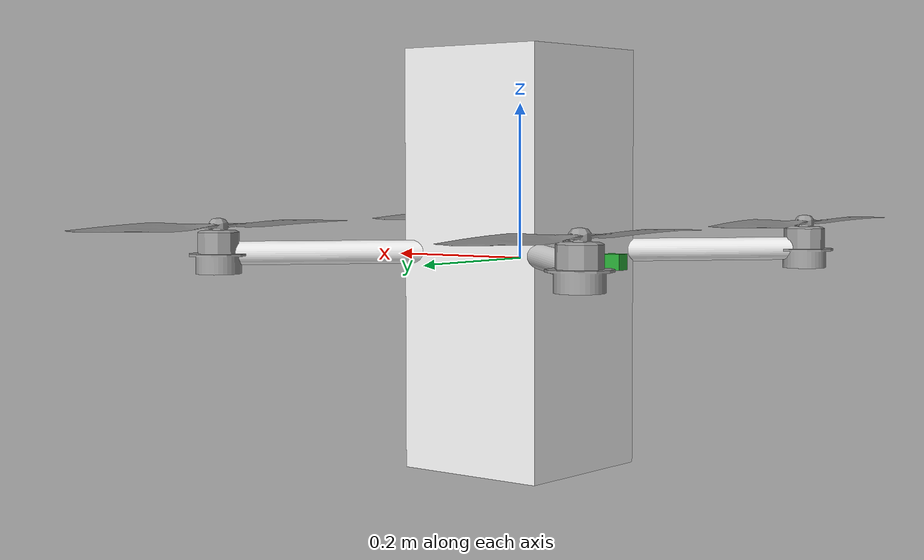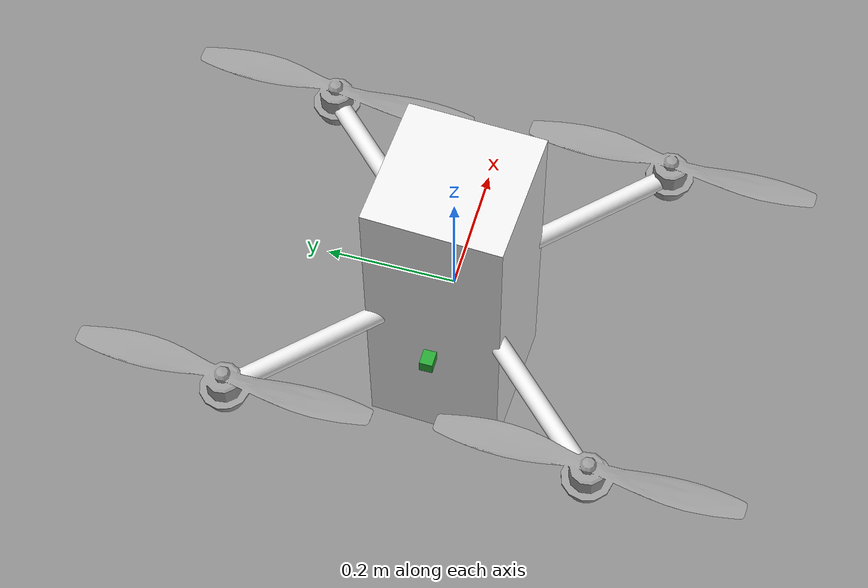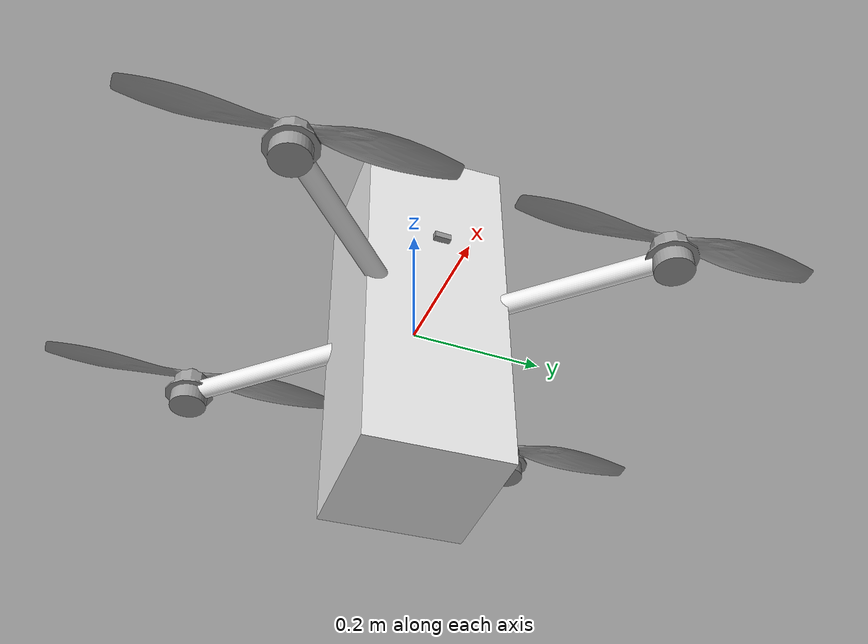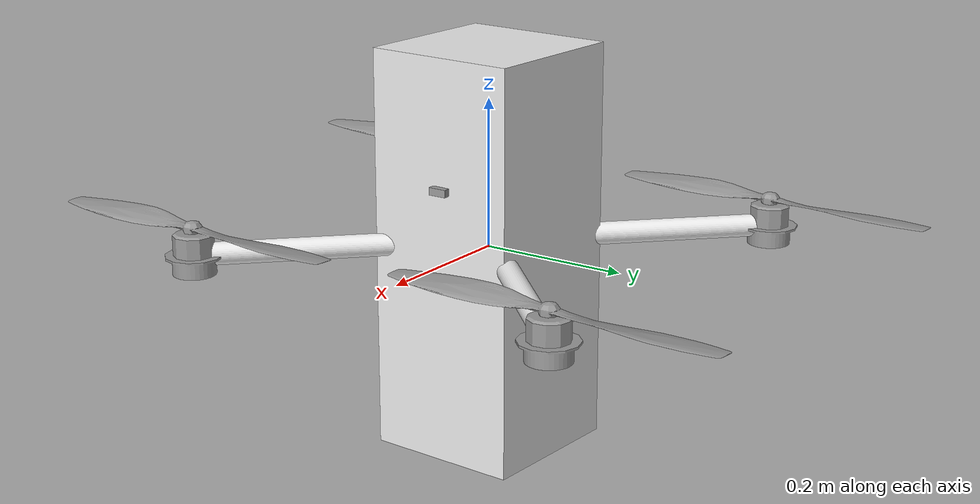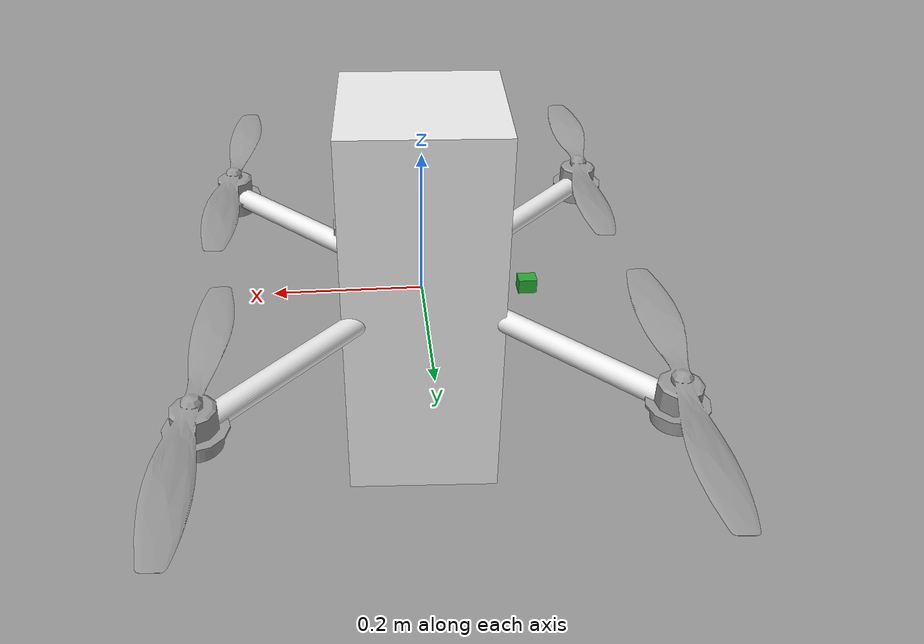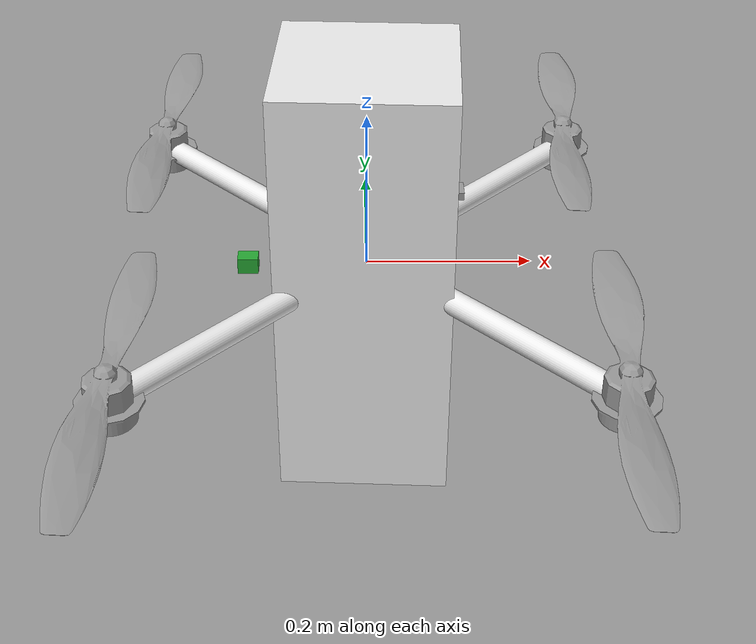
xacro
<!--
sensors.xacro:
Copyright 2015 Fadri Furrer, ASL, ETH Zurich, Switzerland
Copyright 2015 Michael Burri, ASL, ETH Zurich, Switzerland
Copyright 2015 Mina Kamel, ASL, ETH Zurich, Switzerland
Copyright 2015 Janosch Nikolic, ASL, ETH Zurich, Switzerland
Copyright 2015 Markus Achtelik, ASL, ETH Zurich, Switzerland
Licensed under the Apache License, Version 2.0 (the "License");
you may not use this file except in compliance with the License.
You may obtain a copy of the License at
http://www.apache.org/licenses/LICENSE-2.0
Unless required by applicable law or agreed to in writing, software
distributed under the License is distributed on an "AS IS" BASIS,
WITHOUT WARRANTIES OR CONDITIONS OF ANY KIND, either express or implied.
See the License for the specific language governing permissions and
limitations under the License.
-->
<?xml version="1.0"?>

<robot xmlns:xacro="http://ros.org/wiki/xacro" name="quadro">

  <xacro:property name="quadro_path" value="package://copter_models/quadro/mesh" />
  <xacro:property name="motor_command_topic" value="/gazebo/command/motor_speed" />

  <xacro:include filename="$(find copter_models)/quadro/materials.xacro" />
  <xacro:include filename="$(find copter_models)/quadro/sensors.xacro" />
  <xacro:include filename="$(find copter_models)/quadro/arm_prop.xacro" />

	<!-- Macro to add Drone -->
    <xacro:macro name="quadro" params="base_link_name mono stereo depth rfd_down hokuyo_hor volodyne_ver">

		<xacro:property name="base_geometry">
		  <origin rpy="0 0 -0.05" xyz="0 0 0"/>
		  <geometry>
		    <box size="0.21 0.21 0.54"/>
		  </geometry>
		</xacro:property>

        <link name="${base_link_name}">
            <inertial>
                <origin xyz="0 0 0" rpy="0 0 0"/>
                <mass value="1.8" />
                <inertia ixx="0.04" ixy="0.0" ixz="0.0" iyy="0.03" iyz="0.0" izz="0.02" />
            </inertial>
            <collision name="${base_link_name}_collision">
				<xacro:insert_block name="base_geometry" />
            </collision>
            <visual name="${base_link_name}_visual">
				<xacro:insert_block name="base_geometry" />
                <material name="white" />
            </visual>

            <self_collide> 0 </self_collide>
            <kinematic>1</kinematic>
            <gravity>1</gravity>
        </link>

        <xacro:quadro_arm
            parent="${base_link_name}"
            number="0"
            rotor_name="front_right"
            arm_xyz="0.105 0.105 0.01"
            arm_rpy="0 0 0"
            prop_xyz="0.1675 0.1675 0"
            prop_rpy="0 0 0"
            direction="cw"
            motor_number="2"
        />

        <xacro:quadro_arm
            parent="${base_link_name}"
            number="1"
            rotor_name="back_left"
            arm_xyz="-0.105 0.105 0.01"
            arm_rpy="0 0 0"
            prop_xyz="-0.1675 0.1675 0"
            prop_rpy="0 0 0"
            direction="ccw"
            motor_number="1"
        />

        <xacro:quadro_arm
            parent="${base_link_name}"
            number="2"
            rotor_name="back_right"
            arm_xyz="-0.105 -0.105 0.01"
            arm_rpy="0 0 0"
            prop_xyz="-0.1675 -0.1675 0"
            prop_rpy="0 0 0"
            direction="cw"
            motor_number="3"
        />

        <xacro:quadro_arm
            parent="${base_link_name}"
            number="3"
            rotor_name="front_left"
            arm_xyz="0.105 -0.105 0.01"
            arm_rpy="0 0 0"
            prop_xyz="0.1675 -0.1675 0"
            prop_rpy="0 0 0"
            direction="ccw"
            motor_number="0"
        />

        <xacro:lamp
        	parent_link="${base_link_name}"
        	lamp_name="lamp_front"
        	range="8"
        	xyz="0.195 0. -0.22"
        	rpy="0 -${pi/2} 0">
        </xacro:lamp>

        <xacro:if value="${mono}">
	        <xacro:mono_camera
	        	namespace=""
	        	parent_link="${base_link_name}"
	        	camera_suffix="mono"
	        	frame_rate="30"
	        	xyz="0.11 0 0.1"
	        	rpy="0 0 0"
	        />
	    </xacro:if>

        <xacro:if value="${stereo}">
	        <xacro:stereo_camera
	        	namespace=""
	        	camera_name="stereo"
	        	parent_link="${base_link_name}"
	        	frame_rate="30"
	        	max_range="10"
		        xyz_left="0.11 0.055 0.03"
		        xyz_right="0.11 -0.055 0.03"
		        baseline="0.11"
		        rpy="0 0 0"
	        />
        </xacro:if>

        <xacro:if value="${depth}">
	        <xacro:camera_depth
		        namespace=""
		        parent_link="${base_link_name}"
		        camera_suffix="depth"
		        frame_rate="30"
		        max_range="10"
		        xyz="0.11 0 -0.01"
		        rpy="0 0 0"
	        />
	    </xacro:if>

        <xacro:if value="${rfd_down}">
        	<xacro:rangefinder
        		namespace="/"
        		parent_link="${base_link_name}"
        		lidar_name="rfd_down_one"
        		rate="10.0"
        		hor_samples="1"
        		hor_min_angle="-0.01"
        		hor_max_angle="0.01"
        		ver_samples="1"
        		ver_min_angle="-0.01"
        		ver_max_angle="0.01"
        		min_range="0.05"
        		max_range="100.0"
        		fov="0.02"
        		gaus_noise="0.02">
        		<origin xyz="-0.145 0 0" rpy="0 1.5708 0"/>
        	</xacro:rangefinder>
        </xacro:if>

        <xacro:if value="${hokuyo_hor}">
        	<xacro:hokuyo
        		namespace="/"
        		parent_link="${base_link_name}"
        		lidar_name="hokuyo_hor"
        		rate="10.0"
        		hor_samples="360"
        		hor_min_angle="-2.3561944902"
        		hor_max_angle="2.3561944902"
        		ver_samples="1"
        		ver_min_angle="-0.001"
        		ver_max_angle="0.001"
        		max_range="10.0">
        		<origin xyz="0 0 0.13" rpy="0 0 0"/>
        	</xacro:hokuyo>
        </xacro:if>

        <xacro:if value="${volodyne_ver}">
        	<xacro:velodyne
        		namespace="/"
        		parent_link="${base_link_name}"
        		lidar_name="velodyne_ver"
        		rate="10.0"
        		hor_samples="120"
        		hor_min_angle="-${2*pi}"
        		hor_max_angle="${2*pi}"
        		ver_samples="32"
        		ver_min_angle="-0.53527"
        		ver_max_angle="0.18622"
        		min_range="0.65"
        		max_range="10.0"
        		gaus_noise="0.0">
        		<origin xyz="0 -0.05 0.09" rpy="0 ${pi/2} 0"/>
        	</xacro:velodyne>
        </xacro:if>

        <xacro:default_mavlink_interface
	        namespace=""
	        imu_sub_topic="imu"
	        mavlink_addr="INADDR_ANY"
	        mavlink_udp_port="14560"
        />

        <xacro:multirotors
        	link_name="${base_link_name}"
        />

	<xacro:fcu
		namespace=""
		parent_link="base_link"
		imu_topic="imu"
		xyz="0 0 0"
		rpy="0 0 0"
	/>

        <xacro:imu_sensor
	        namespace=""
	        parent_link="${base_link_name}"
	        imu_suffix="_ideal1"
	        imu_topic="imu_ideal1"
	        rate="100"
	        gauss_noise="0.02"
	        xyz="0 0 0"
	        rpy="0 0 0"
        />

    </xacro:macro>

	<!-- Use Xacro -->
	<xacro:quadro
		base_link_name="base_link"
		mono="true"
		stereo="true"
		depth="true"
		rfd_down="true"
		hokuyo_hor="true"
		volodyne_ver="true"
	/>

</robot>

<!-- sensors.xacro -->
<robot xmlns:xacro="http://ros.org/wiki/xacro">

<!-- Macro to add lamp -->
<xacro:macro name="lamp" params="parent_link lamp_name range xyz rpy">
   <link name="${lamp_name}_link">
      <inertial>
        <mass value="1e-5" />
        <origin xyz="0 0 0" rpy="0 0 0" />
        <inertia ixx="1e-6" ixy="0" ixz="0" iyy="1e-6" iyz="0" izz="1e-6" />
      </inertial>
   </link>
   <joint name="${lamp_name}_joint" type="fixed">
      <origin xyz="${xyz}" rpy="${rpy}"/>
      <parent link="${parent_link}" />
      <child link="${lamp_name}_link" />
   </joint>
   <gazebo reference="${lamp_name}_link">
	  <light type='spot'>
	    <pose>${xyz} ${rpy}</pose>
	    <diffuse>1. 1. 1. 1</diffuse>
	    <specular>0.1 0.1 0.1 1</specular>
	    <direction>0 0 -1</direction>
	    <attenuation>
	      <range>${range}.</range>
	      <constant>0.01</constant>
	      <linear>0.07</linear>
	      <quadratic>0.05</quadratic>
	    </attenuation>
	    <cast_shadows>0</cast_shadows>
	    <spot>
	      <inner_angle>0.2</inner_angle>
	      <outer_angle>0.8</outer_angle>
	      <falloff>1.8</falloff>
	    </spot>
	  </light>
	</gazebo>
</xacro:macro>

  <!-- Macro to add a camera. -->
  <xacro:macro name="mono_camera_macro"
    params="namespace parent_link camera_suffix frame_rate
      horizontal_fov image_width image_height image_format min_distance
      max_distance noise_mean noise_stddev enable_visual *geometry *origin">
    <link name="${namespace}/camera_${camera_suffix}_link">
      <collision>
        <origin xyz="0 0 0" rpy="0 0 0" />
        <geometry>
          <xacro:insert_block name="geometry" />
        </geometry>
      </collision>
      <xacro:if value="${enable_visual}">
        <visual>
          <origin xyz="0 0 0" rpy="0 ${pi/2} 0" />
          <geometry>
            <xacro:insert_block name="geometry" />
          </geometry>
          <material name="grey" />
        </visual>
      </xacro:if>
      <inertial>
        <mass value="1e-5" />
        <origin xyz="0 0 0" rpy="0 0 0" />
        <inertia ixx="1e-6" ixy="0" ixz="0" iyy="1e-6" iyz="0" izz="1e-6" />
      </inertial>
    </link>
    <joint name="${namespace}/camera_${camera_suffix}_joint" type="fixed">
      <xacro:insert_block name="origin" />
      <parent link="${parent_link}" />
      <child link="${namespace}/camera_${camera_suffix}_link" />
    </joint>
    <link name="${namespace}/camera_${camera_suffix}_optical_link" />
    <joint name="${namespace}/camera_${camera_suffix}_optical_joint" type="fixed" >
      <origin xyz="0 0 0" rpy="${-pi/2} 0 ${-pi/2}" />
      <parent link="${namespace}/camera_${camera_suffix}_link" />
      <child link="${namespace}/camera_${camera_suffix}_optical_link" />
    </joint>
    <gazebo reference="${namespace}/camera_${camera_suffix}_link">
      <sensor type="camera" name="${namespace}_camera_${camera_suffix}">
        <update_rate>${frame_rate}</update_rate>
        <camera name="head">
          <horizontal_fov>${horizontal_fov}</horizontal_fov>
          <image>
            <width>${image_width}</width>
            <height>${image_height}</height>
            <format>${image_format}</format>
          </image>
          <clip>
            <near>${min_distance}</near>
            <far>${max_distance}</far>
          </clip>
          <noise>
            <type>gaussian</type>
            <!-- Noise is sampled independently per pixel on each frame.
                 That pixel's noise value is added to each of its color
                 channels, which at that point lie in the range [0,1]. -->
            <mean>${noise_mean}</mean>
            <stddev>${noise_stddev}</stddev>
          </noise>
        </camera>
        <plugin name="${namespace}_camera_${camera_suffix}_controller" filename="libgazebo_ros_camera.so">
          <alwaysOn>true</alwaysOn>
          <updateRate>${frame_rate}</updateRate>
          <cameraName>camera_${camera_suffix}</cameraName>
          <imageTopicName>image_raw</imageTopicName>
          <cameraInfoTopicName>camera_info</cameraInfoTopicName>
          <frameName>camera_${camera_suffix}_optical_link</frameName>
          <hackBaseline>0.0</hackBaseline>
          <distortionK1>0.0</distortionK1>
          <distortionK2>0.0</distortionK2>
          <distortionK3>0.0</distortionK3>
          <distortionT1>0.0</distortionT1>
          <distortionT2>0.0</distortionT2>
        </plugin>
      </sensor>
    </gazebo>
  </xacro:macro>

  <!-- Camera joint macro - just the joints, links, and collisions for a single
       camera. -->
  <xacro:macro name="camera_joint_macro"
    params="namespace parent_link camera_name camera_suffix enable_visual *origin *geometry" >
    <link name="${namespace}/${camera_name}_${camera_suffix}_link">
      <collision>
        <origin xyz="0 0 0" rpy="0 0 0" />
        <geometry>
          <xacro:insert_block name="geometry" />
        </geometry>
      </collision>
      <xacro:if value="${enable_visual}">
        <visual>
          <origin xyz="0 0 0" rpy="0 0 0" />
          <geometry>
            <xacro:insert_block name="geometry" />
          </geometry>
          <material name="red" />
        </visual>
      </xacro:if>
      <inertial>
        <mass value="1e-5" />
        <origin xyz="0 0 0" rpy="0 0 0" />
        <inertia ixx="1e-6" ixy="0" ixz="0" iyy="1e-6" iyz="0" izz="1e-6" />
      </inertial>
    </link>
    <joint name="${namespace}/${camera_name}_${camera_suffix}_joint" type="fixed">
      <xacro:insert_block name="origin" />
      <parent link="${parent_link}" />
      <child link="${namespace}/${camera_name}_${camera_suffix}_link" />
    </joint>
  </xacro:macro>

  <!-- Camera sensor macro - just image parameters. -->
  <xacro:macro name="camera_sensor_macro"
    params="camera_suffix horizontal_fov image_width image_height
      image_format min_distance max_distance noise_mean noise_stddev
      baseline" >
    <camera name="${camera_suffix}">
      <pose>0 ${-baseline} 0 0 0 0</pose>
      <horizontal_fov>${horizontal_fov}</horizontal_fov>
      <image>
        <width>${image_width}</width>
        <height>${image_height}</height>
        <format>${image_format}</format>
      </image>
      <clip>
        <near>${min_distance}</near>
        <far>${max_distance}</far>
      </clip>
      <noise>
        <type>gaussian</type>
        <!-- Noise is sampled independently per pixel on each frame.
             That pixel's noise value is added to each of its color
             channels, which at that point lie in the range [0,1]. -->
        <mean>${noise_mean}</mean>
        <stddev>${noise_stddev}</stddev>
      </noise>
    </camera>
  </xacro:macro>

  <!-- Macro to add a multicamera (stereo pair). -->
  <xacro:macro name="stereo_camera_macro"
    params="namespace camera_name parent_link frame_rate
      horizontal_fov image_width image_height image_format min_distance
      max_distance noise_mean noise_stddev enable_visual xyz_left xyz_right
      baseline rpy  *geometry">
    <!-- These are parameters for the left camera link and then the right
        as well. -->
    <xacro:camera_joint_macro
      namespace="${namespace}"
      camera_name="${camera_name}"
      parent_link="${parent_link}"
      camera_suffix="left"
      enable_visual="${enable_visual}">
      <origin xyz="${xyz_left}" rpy="${rpy}" />
      <xacro:insert_block name="geometry" />
    </xacro:camera_joint_macro>
    <xacro:camera_joint_macro
      namespace="${namespace}"
      camera_name="${camera_name}"
      parent_link="${parent_link}"
      camera_suffix="right"
      enable_visual="${enable_visual}">
      <origin xyz="${xyz_right}" rpy="${rpy}" />
      <xacro:insert_block name="geometry" />
    </xacro:camera_joint_macro>

    <link name="${namespace}/${camera_name}_left_optical_link" />
    <joint name="${namespace}/${camera_name}_left_optical_joint" type="fixed" >
      <origin xyz="0 0 0" rpy="${-pi/2} 0 ${-pi/2}" />
      <parent link="${namespace}/${camera_name}_left_link" />
      <child link="${namespace}/${camera_name}_left_optical_link" />
    </joint>

    <!-- Both cameras in the pair are anchored off the left camera frame. -->
    <gazebo reference="${namespace}/${camera_name}_left_link">
      <sensor type="multicamera" name="${namespace}_stereo_camera">
        <update_rate>${frame_rate}</update_rate>

        <!-- Here we set up the individual cameras of the stereo head. -->
        <xacro:camera_sensor_macro camera_suffix="left"
            horizontal_fov="${horizontal_fov}" image_width="${image_width}"
            image_height="${image_height}" image_format="${image_format}"
            min_distance="${min_distance}" max_distance="${max_distance}"
            noise_mean="${noise_mean}" noise_stddev="${noise_stddev}"
            baseline="0">
        </xacro:camera_sensor_macro>

        <xacro:camera_sensor_macro camera_suffix="right"
            horizontal_fov="${horizontal_fov}" image_width="${image_width}"
            image_height="${image_height}" image_format="${image_format}"
            min_distance="${min_distance}" max_distance="${max_distance}"
            noise_mean="${noise_mean}" noise_stddev="${noise_stddev}"
            baseline="${baseline}">
        </xacro:camera_sensor_macro>

        <!-- Stereo controller, setting the transforms between the two cameras. -->
        <plugin name="${namespace}_stereo_camera_controller" filename="libgazebo_ros_multicamera.so">
          <alwaysOn>true</alwaysOn>
          <updateRate>0.0</updateRate>
          <cameraName>${camera_name}</cameraName>
          <imageTopicName>image_raw</imageTopicName>
          <cameraInfoTopicName>camera_info</cameraInfoTopicName>
          <frameName>${camera_name}_left_optical_link</frameName>
          <hackBaseline>${baseline}</hackBaseline>
          <distortionK1>0.0</distortionK1>
          <distortionK2>0.0</distortionK2>
          <distortionK3>0.0</distortionK3>
          <distortionT1>0.0</distortionT1>
          <distortionT2>0.0</distortionT2>
        </plugin>
      </sensor>
    </gazebo>
  </xacro:macro>

  <!-- Macro to add the controller interface. -->
  <xacro:macro name="controller_plugin_macro" params="namespace imu_sub_topic">
    <gazebo>
      <plugin name="controller_interface" filename="librotors_gazebo_controller_interface.so">
        <robotNamespace>${namespace}</robotNamespace>
        <commandAttitudeThrustSubTopic>command/attitude</commandAttitudeThrustSubTopic>
        <commandRateThrustSubTopic>command/rate</commandRateThrustSubTopic>
        <commandMotorSpeedSubTopic>command/motor_speed</commandMotorSpeedSubTopic>
        <imuSubTopic>${imu_sub_topic}</imuSubTopic>
        <motorSpeedCommandPubTopic>gazebo/command/motor_speed</motorSpeedCommandPubTopic>
      </plugin>
    </gazebo>
  </xacro:macro>

  	<!-- Macro to add Multirotors -->
    <xacro:macro name="multirotors" params="link_name">
		<gazebo>
		  <plugin filename="librotors_gazebo_multirotor_base_plugin.so" name="multirotor_base">
			<robotNamespace />
			<linkName>${link_name}</linkName>
			<rotorVelocitySlowdownSim>10</rotorVelocitySlowdownSim>
		  </plugin>
		</gazebo>
    </xacro:macro>

    <!-- Macro to add 1-D Range sensor -->
	<xacro:macro name="rangefinder" params="namespace parent_link lidar_name rate hor_samples hor_min_angle hor_max_angle ver_samples ver_min_angle ver_max_angle min_range max_range gaus_noise fov *origin" >
      <link name="${lidar_name}_link">
	    <collision>
	      <origin xyz="0 0 0" rpy="0 0 0" />
	      <geometry>
	        <box size="0.02 0.02 0.025"/>
	      </geometry>
	    </collision>
		<visual>
		  <origin xyz="0 0 0" rpy="0 0 0" />
		  <geometry>
		    <box size="0.02 0.02 0.025"/>
		  </geometry>
		  <material name="green" />
		</visual>
		 <inertial>
		   <mass value="1e-5" />
		   <origin xyz="0 0 0" rpy="0 0 0" />
		   <inertia ixx="1e-6" ixy="0" ixz="0" iyy="1e-6" iyz="0" izz="1e-6" />
		 </inertial>
      </link>

	  <joint name="${lidar_name}_joint" type="fixed">
	      <parent link="${parent_link}" />
	      <child link="${lidar_name}_link" />
	      <xacro:insert_block name="origin"/>
	      <limit upper="0" lower="0" effort="0" velocity="0" />
	  </joint>
	  <gazebo reference="${lidar_name}_link">
	      <sensor name="${lidar_name}_sensor" type="ray">
              <visualize>false</visualize>
              <update_rate>${rate}</update_rate>
              <ray>
                  <scan>
                      <horizontal>
                          <samples>${hor_samples}</samples>
                          <resolution>1</resolution>
                          <min_angle>${hor_min_angle}</min_angle>
                          <max_angle>${hor_max_angle}</max_angle>
                      </horizontal>
                      <vertical>
                          <samples>${ver_samples}</samples>
                          <resolution>1</resolution>
                          <min_angle>${ver_min_angle}</min_angle>
                          <max_angle>${ver_max_angle}</max_angle>
                      </vertical>
                  </scan>
                  <range>
                      <min>${min_range}</min>
                      <max>${max_range}</max>
                      <resolution>0.02</resolution>
                  </range>
                  <noise>
			          <type>gaussian</type>
			          <mean>0.0</mean>
			          <stddev>0.01</stddev>
		          </noise>
              </ray>
              <plugin filename="libgazebo_ros_range.so" name="${lidar_name}_controller">
                  <robotNamespace>${namespace}</robotNamespace>
                  <topicName>${lidar_name}/range</topicName>
                  <frameName>${lidar_name}_link</frameName>
                  <alwaysOn>true</alwaysOn>
                  <visualize>true</visualize>
                  <gaussianNoise>${gaus_noise}</gaussianNoise>
      			  <updateRate>${rate}</updateRate>
         		  <radiation>infrared</radiation>
				  <minRange>${min_range}</minRange>
  				  <maxRange>${max_range}</maxRange>
         		  <fov>${fov}</fov>
              </plugin>
          </sensor>
	  </gazebo>
    </xacro:macro>

    <!-- Macro to add 2D lidar Hokuyo -->
    <xacro:macro name="hokuyo" params="namespace parent_link lidar_name rate hor_samples hor_min_angle hor_max_angle  ver_samples ver_min_angle ver_max_angle max_range *origin" >
      <link name="${lidar_name}_link">
	    <collision>
	      <origin xyz="0 0 0" rpy="0 0 0" />
	      <geometry>
	        <box size="0.02 0.02 0.025"/>
	      </geometry>
	    </collision>
		<visual>
		  <origin xyz="0 0 0" rpy="0 0 0" />
		  <geometry>
		    <box size="0.02 0.02 0.025"/>
		  </geometry>
		  <material name="green" />
		</visual>
		 <inertial>
		   <mass value="1e-5" />
		   <origin xyz="0 0 0" rpy="0 0 0" />
		   <inertia ixx="1e-6" ixy="0" ixz="0" iyy="1e-6" iyz="0" izz="1e-6" />
		 </inertial>
      </link>

	  <joint name="${lidar_name}_joint" type="fixed">
	      <parent link="${parent_link}" />
	      <child link="${lidar_name}_link" />
	      <xacro:insert_block name="origin"/>
	      <limit upper="0" lower="0" effort="0" velocity="0" />
	  </joint>
	  <gazebo reference="${lidar_name}_link">
	      <sensor name="${lidar_name}_sensor" type="gpu_ray">
              <visualize>false</visualize>
              <update_rate>${rate}</update_rate>
              <ray>
                  <scan>
                      <horizontal>
                          <samples>${hor_samples}</samples>
                          <resolution>1</resolution>
                          <min_angle>${hor_min_angle}</min_angle>
                          <max_angle>${hor_max_angle}</max_angle>
                      </horizontal>
                      <vertical>
                          <samples>${ver_samples}</samples>
                          <resolution>1</resolution>
                          <min_angle>${ver_min_angle}</min_angle>
                          <max_angle>${ver_max_angle}</max_angle>
                      </vertical>
                  </scan>
                  <range>
                      <min>0.2</min>
                      <max>${max_range}</max>
                  </range>
                  <noise>
			          <type>gaussian</type>
			          <mean>0.0</mean>
			          <stddev>0.01</stddev>
		          </noise>
              </ray>
              <plugin filename="libgazebo_ros_gpu_laser.so" name="${lidar_name}_controller">
                  <robotNamespace>${namespace}</robotNamespace>
                  <topicName>${lidar_name}/lidar/scan</topicName>
                  <frameName>${lidar_name}_link</frameName>
              </plugin>
          </sensor>
	  </gazebo>
    </xacro:macro>

    <!-- Macro to add 3D lidar Velodyne -->
    <xacro:macro name="velodyne" params="namespace parent_link lidar_name rate hor_samples hor_min_angle hor_max_angle  ver_samples ver_min_angle ver_max_angle min_range max_range gaus_noise *origin" >
      <link name="${lidar_name}_link">
	    <collision>
	      <origin xyz="0 0 0" rpy="0 0 0" />
	      <geometry>
	        <box size="0.03 0.03 0.05"/>
	      </geometry>
	    </collision>
		<visual>
		  <origin xyz="0 0 0" rpy="0 0 0" />
		  <geometry>
		    <box size="0.03 0.03 0.05"/>
		  </geometry>
		  <material name="green" />
		</visual>
		 <inertial>
		   <mass value="1e-5" />
		   <origin xyz="0 0 0" rpy="0 0 0" />
		   <inertia ixx="1e-6" ixy="0" ixz="0" iyy="1e-6" iyz="0" izz="1e-6" />
		 </inertial>
      </link>

	  <joint name="${lidar_name}_joint" type="fixed">
	      <parent link="${parent_link}" />
	      <child link="${lidar_name}_link" />
	      <xacro:insert_block name="origin"/>
	      <limit upper="0" lower="0" effort="0" velocity="0" />
	  </joint>
	  <gazebo reference="${lidar_name}_link">
	      <sensor name="${lidar_name}_sensor" type="ray">
              <visualize>false</visualize>
              <update_rate>${rate}</update_rate>
              <ray>
                  <scan>
                      <horizontal>
                          <samples>${hor_samples}</samples>
                          <resolution>1</resolution>
                          <min_angle>${hor_min_angle}</min_angle>
                          <max_angle>${hor_max_angle}</max_angle>
                      </horizontal>
                      <vertical>
                          <samples>${ver_samples}</samples>
                          <resolution>1</resolution>
                          <min_angle>${ver_min_angle}</min_angle>
                          <max_angle>${ver_max_angle}</max_angle>
                      </vertical>
                  </scan>
                  <range>
                      <min>${min_range}</min>
                      <max>${max_range}</max>
                  </range>
                  <noise>
        	          <type>gaussian</type>
		          <mean>0.0</mean>
                          <stddev>0.0</stddev>
    	          </noise>
              </ray>
              <plugin filename="libgazebo_ros_velodyne_laser.so" name="${lidar_name}_controller">
                  <robotNamespace>${namespace}</robotNamespace>
                  <topicName>${lidar_name}/points</topicName>
                  <frameName>${lidar_name}_link</frameName>
        	  <min_range>${min_range}</min_range>
		  <max_range>${max_range}</max_range>
		  <gaussianNoise>${gaus_noise}</gaussianNoise>
              </plugin>
          </sensor>
	  </gazebo>
    </xacro:macro>

  <!-- ==================== ROS INTERFACE MACRO ====================== -->

  <!-- ================== MAVLINK INTERFACE MACRO ==================== -->
  <xacro:macro name="mavlink_interface_macro"
    params="namespace
            imu_sub_topic
            mavlink_addr
            mavlink_udp_port
            motors_speeds_pub_topic">
    <gazebo>
      <plugin name="mavlink_interface" filename="librotors_gazebo_mavlink_interface.so">
        <robotNamespace>${namespace}</robotNamespace>
        <imuSubTopic>${imu_sub_topic}</imuSubTopic>
        <mavlink_addr>${mavlink_addr}</mavlink_addr>
        <mavlink_udp_port>${mavlink_udp_port}</mavlink_udp_port>
		<motorSpeedsPubTopic>${motors_speeds_pub_topic}</motorSpeedsPubTopic>
		<control_channels>
          <channel name="rotor1">
            <input_index>0</input_index>
            <input_offset>0</input_offset>
            <input_scaling>1000</input_scaling>
            <zero_position_disarmed>0</zero_position_disarmed>
            <zero_position_armed>100</zero_position_armed>
            <joint_control_type>velocity</joint_control_type>
          </channel>
          <channel name="rotor2">
            <input_index>1</input_index>
            <input_offset>0</input_offset>
            <input_scaling>1000</input_scaling>
            <zero_position_disarmed>0</zero_position_disarmed>
            <zero_position_armed>100</zero_position_armed>
            <joint_control_type>velocity</joint_control_type>
          </channel>
          <channel name="rotor3">
            <input_index>2</input_index>
            <input_offset>0</input_offset>
            <input_scaling>1000</input_scaling>
            <zero_position_disarmed>0</zero_position_disarmed>
            <zero_position_armed>100</zero_position_armed>
            <joint_control_type>velocity</joint_control_type>
          </channel>
          <channel name="rotor4">
            <input_index>3</input_index>
            <input_offset>0</input_offset>
            <input_scaling>1000</input_scaling>
            <zero_position_disarmed>0</zero_position_disarmed>
            <zero_position_armed>100</zero_position_armed>
            <joint_control_type>velocity</joint_control_type>
          </channel>
          <channel name="rotor5">
            <input_index>4</input_index>
            <input_offset>1</input_offset>
            <input_scaling>324.6</input_scaling>
            <zero_position_disarmed>0</zero_position_disarmed>
            <zero_position_armed>0</zero_position_armed>
            <joint_control_type>velocity</joint_control_type>
            <joint_control_pid>
              <p>0.1</p>
              <i>0</i>
              <d>0</d>
              <iMax>0.0</iMax>
              <iMin>0.0</iMin>
              <cmdMax>2</cmdMax>
              <cmdMin>-2</cmdMin>
            </joint_control_pid>
            <joint_name>zephyr_delta_wing::propeller_joint</joint_name>
          </channel>
          <channel name="rotor6">
            <input_index>5</input_index>
            <input_offset>0</input_offset>
            <input_scaling>0.524</input_scaling>
            <zero_position_disarmed>0</zero_position_disarmed>
            <zero_position_armed>0</zero_position_armed>
            <joint_control_type>position</joint_control_type>
            <joint_name>zephyr_delta_wing::flap_left_joint</joint_name>
            <joint_control_pid>
              <p>10.0</p>
              <i>0</i>
              <d>0</d>
              <iMax>0</iMax>
              <iMin>0</iMin>
              <cmdMax>20</cmdMax>
              <cmdMin>-20</cmdMin>
            </joint_control_pid>
          </channel>
          <channel name="rotor7">
            <input_index>6</input_index>
            <input_offset>0</input_offset>
            <input_scaling>0.524</input_scaling>
            <zero_position_disarmed>0</zero_position_disarmed>
            <zero_position_armed>0</zero_position_armed>
            <joint_control_type>position</joint_control_type>
            <joint_name>zephyr_delta_wing::flap_right_joint</joint_name>
            <joint_control_pid>
              <p>10.0</p>
              <i>0</i>
              <d>0</d>
              <iMax>0</iMax>
              <iMin>0</iMin>
              <cmdMax>20</cmdMax>
              <cmdMin>-20</cmdMin>
            </joint_control_pid>
          </channel>
          <channel name="rotor8">
            <input_index>7</input_index>
            <input_offset>0</input_offset>
            <input_scaling>0.524</input_scaling>
            <zero_position_disarmed>0</zero_position_disarmed>
            <zero_position_armed>0</zero_position_armed>
            <joint_control_type>position</joint_control_type>
          </channel>
        </control_channels>
      </plugin>
    </gazebo>
  </xacro:macro>

  <!-- Macro to add GazeboRos IMU. -->
  <xacro:macro name="imu_sensor_macro"
    params="namespace imu_suffix parent_link imu_topic
      mass_imu_sensor rate gauss_noise
      *inertia *origin">
    <!-- IMU link -->
    <link name="${namespace}/imu${imu_suffix}_link">
      <inertial>
        <xacro:insert_block name="inertia" />
        <mass value="${mass_imu_sensor}" />  <!-- [kg] -->
        <origin xyz="0 0 0" rpy="0 0 0" />
      </inertial>
    </link>
    <!-- IMU joint -->
    <joint name="${namespace}/imu${imu_suffix}_joint" type="revolute">
      <xacro:insert_block name="origin" />
      <parent link="${parent_link}" />
      <child link="${namespace}/imu${imu_suffix}_link" />
      <limit upper="0" lower="0" effort="0" velocity="0" />
    </joint>
	<gazebo reference="${namespace}/imu${imu_suffix}_link">
	    <gravity>true</gravity>
	    <sensor name="imu${imu_suffix}_sensor" type="imu">
	      <always_on>true</always_on>
	      <update_rate>${rate}</update_rate>
	      <visualize>true</visualize>
	      <topic>__default_topic__</topic>
	      <plugin filename="libgazebo_ros_imu_sensor.so" name="imu${imu_suffix}_plugin">
	        <topicName>${imu_topic}</topicName>
	        <bodyName>imu${imu_suffix}_sensor</bodyName>
	        <updateRateHZ>${rate}</updateRateHZ>
	        <gaussianNoise>${gauss_noise}</gaussianNoise>
	        <xyzOffset>0 0 0</xyzOffset>
	        <rpyOffset>0 0 0</rpyOffset>
	        <frameName>imu${imu_suffix}_link</frameName>
	      </plugin>
	      <pose>0 0 0 0 0 0</pose>
	    </sensor>
	</gazebo>
  </xacro:macro>

    <!-- Macro to add FCU. -->
  <xacro:macro name="fcu_macro"
    params="namespace parent_link imu_topic
      mass_imu_sensor gyroscope_noise_density gyroscope_random_walk
      gyroscope_bias_correlation_time gyroscope_turn_on_bias_sigma
      accelerometer_noise_density accelerometer_random_walk
      accelerometer_bias_correlation_time accelerometer_turn_on_bias_sigma
      *inertia *origin">
    <!-- IMU link -->
    <link name="${namespace}/fcu">
      <inertial>
        <xacro:insert_block name="inertia" />
        <mass value="${mass_imu_sensor}" />  <!-- [kg] -->
        <origin xyz="0 0 0" rpy="0 0 0" />
      </inertial>
    </link>
    <!-- IMU joint -->
    <joint name="${namespace}/fcu_joint" type="revolute">
      <xacro:insert_block name="origin" />
      <parent link="${parent_link}" />
      <child link="${namespace}/fcu" />
      <limit upper="0" lower="0" effort="0" velocity="0" />
    </joint>
    <gazebo>
      <plugin filename="librotors_gazebo_imu_plugin.so" name="rotors_fcu_plugin">
      <!-- A good description of the IMU parameters can be found in the kalibr documentation:
           https://github.com/ethz-asl/kalibr/wiki/IMU-Noise-Model-and-Intrinsics -->
        <robotNamespace>${namespace}</robotNamespace> <!-- (string, required): ros namespace in which the messages are published -->
        <linkName>${namespace}/fcu</linkName> <!-- (string, required): name of the body which holds the IMU sensor -->
        <imuTopic>${imu_topic}</imuTopic> <!-- (string): name of the sensor output topic and prefix of service names (defaults to imu) -->
        <gyroscopeNoiseDensity>${gyroscope_noise_density}</gyroscopeNoiseDensity> <!-- Gyroscope noise density (two-sided spectrum) [rad/s/sqrt(Hz)] -->
        <gyroscopeRandomWalk>${gyroscope_random_walk}</gyroscopeRandomWalk> <!-- Gyroscope bias random walk [rad/s/s/sqrt(Hz)] -->
        <gyroscopeBiasCorrelationTime>${gyroscope_bias_correlation_time}</gyroscopeBiasCorrelationTime> <!-- Gyroscope bias correlation time constant [s] -->
        <gyroscopeTurnOnBiasSigma>${gyroscope_turn_on_bias_sigma}</gyroscopeTurnOnBiasSigma> <!-- Gyroscope turn on bias standard deviation [rad/s] -->
        <accelerometerNoiseDensity>${accelerometer_noise_density}</accelerometerNoiseDensity> <!-- Accelerometer noise density (two-sided spectrum) [m/s^2/sqrt(Hz)] -->
        <accelerometerRandomWalk>${accelerometer_random_walk}</accelerometerRandomWalk> <!-- Accelerometer bias random walk. [m/s^2/s/sqrt(Hz)] -->
        <accelerometerBiasCorrelationTime>${accelerometer_bias_correlation_time}</accelerometerBiasCorrelationTime> <!-- Accelerometer bias correlation time constant [s] -->
        <accelerometerTurnOnBiasSigma>${accelerometer_turn_on_bias_sigma}</accelerometerTurnOnBiasSigma> <!-- Accelerometer turn on bias standard deviation [m/s^2] -->
      </plugin>
    </gazebo>
  </xacro:macro>

  <!-- Macro to add an IMU. -->
  <xacro:macro name="imu_plugin_macro"
    params="namespace imu_suffix parent_link imu_topic
      mass_imu_sensor gyroscope_noise_density gyroscope_random_walk
      gyroscope_bias_correlation_time gyroscope_turn_on_bias_sigma
      accelerometer_noise_density accelerometer_random_walk
      accelerometer_bias_correlation_time accelerometer_turn_on_bias_sigma
      *inertia *origin">
    <!-- IMU link -->
    <link name="${namespace}/imu${imu_suffix}_link">
      <inertial>
        <xacro:insert_block name="inertia" />
        <mass value="${mass_imu_sensor}" />  <!-- [kg] -->
        <origin xyz="0 0 0" rpy="0 0 0" />
      </inertial>
    </link>
    <!-- IMU joint -->
    <joint name="${namespace}/imu${imu_suffix}_joint" type="revolute">
      <xacro:insert_block name="origin" />
      <parent link="${parent_link}" />
      <child link="${namespace}/imu${imu_suffix}_link" />
      <limit upper="0" lower="0" effort="0" velocity="0" />
    </joint>
    <gazebo>
      <plugin filename="librotors_gazebo_imu_plugin.so" name="rotors_gazebo_imu${imu_suffix}_plugin">
      <!-- A good description of the IMU parameters can be found in the kalibr documentation:
           https://github.com/ethz-asl/kalibr/wiki/IMU-Noise-Model-and-Intrinsics -->
        <robotNamespace>${namespace}</robotNamespace> <!-- (string, required): ros namespace in which the messages are published -->
        <linkName>${namespace}/imu${imu_suffix}_link</linkName> <!-- (string, required): name of the body which holds the IMU sensor -->
        <imuTopic>${imu_topic}</imuTopic> <!-- (string): name of the sensor output topic and prefix of service names (defaults to imu) -->
        <gyroscopeNoiseDensity>${gyroscope_noise_density}</gyroscopeNoiseDensity> <!-- Gyroscope noise density (two-sided spectrum) [rad/s/sqrt(Hz)] -->
        <gyroscopeRandomWalk>${gyroscope_random_walk}</gyroscopeRandomWalk> <!-- Gyroscope bias random walk [rad/s/s/sqrt(Hz)] -->
        <gyroscopeBiasCorrelationTime>${gyroscope_bias_correlation_time}</gyroscopeBiasCorrelationTime> <!-- Gyroscope bias correlation time constant [s] -->
        <gyroscopeTurnOnBiasSigma>${gyroscope_turn_on_bias_sigma}</gyroscopeTurnOnBiasSigma> <!-- Gyroscope turn on bias standard deviation [rad/s] -->
        <accelerometerNoiseDensity>${accelerometer_noise_density}</accelerometerNoiseDensity> <!-- Accelerometer noise density (two-sided spectrum) [m/s^2/sqrt(Hz)] -->
        <accelerometerRandomWalk>${accelerometer_random_walk}</accelerometerRandomWalk> <!-- Accelerometer bias random walk. [m/s^2/s/sqrt(Hz)] -->
        <accelerometerBiasCorrelationTime>${accelerometer_bias_correlation_time}</accelerometerBiasCorrelationTime> <!-- Accelerometer bias correlation time constant [s] -->
        <accelerometerTurnOnBiasSigma>${accelerometer_turn_on_bias_sigma}</accelerometerTurnOnBiasSigma> <!-- Accelerometer turn on bias standard deviation [m/s^2] -->
      </plugin>
    </gazebo>
  </xacro:macro>

  <!-- Macro to add a mono camera sensor. -->
  <xacro:macro name="mono_camera"
    params="namespace parent_link camera_suffix frame_rate xyz rpy">
    <xacro:mono_camera_macro
      namespace="${namespace}"
      parent_link="${parent_link}"
      camera_suffix="${camera_suffix}"
      frame_rate="${frame_rate}"
      horizontal_fov="1.3962634"
      image_width="640"
      image_height="480"
      image_format="R8G8B8"
      min_distance="0.02"
      max_distance="30"
      noise_mean="0.0"
      noise_stddev="0.007"
      enable_visual="true">
	  <box size="0.01 0.025 0.01"/>
      <origin xyz="${xyz}" rpy="${rpy}" />
    </xacro:mono_camera_macro>
  </xacro:macro>

  <!-- Macro to add a stereo camera. -->
  <xacro:macro name="stereo_camera"
    params="namespace camera_name parent_link frame_rate xyz_left xyz_right baseline rpy max_range">
    <xacro:stereo_camera_macro
      namespace="${namespace}"
      camera_name="${camera_name}"
      parent_link="${parent_link}"
      frame_rate="${frame_rate}"
      horizontal_fov="1.3962634"
      image_width="752"
      image_height="480"
      image_format="R8G8B8"
      min_distance="0.02"
      max_distance="${max_range}"
      noise_mean="0.0"
      noise_stddev="0.007"
      enable_visual="false"
      xyz_left="${xyz_left}"
      xyz_right="${xyz_right}"
      baseline="${baseline}"
      rpy="${rpy}" >
      <cylinder length="0.01" radius="0.007" />
    </xacro:stereo_camera_macro>
  </xacro:macro>

  <xacro:macro name="camera_depth"
    params="namespace parent_link camera_suffix frame_rate max_range xyz rpy">
    <link name="${namespace}/camera_${camera_suffix}_link">
      <collision>
        <origin xyz="0 0 0" rpy="0 0 0" />
        <geometry>
          <cylinder length="0.01" radius="0.007" />
        </geometry>
      </collision>
      <inertial>
        <mass value="1e-5" />
        <origin xyz="0 0 0" rpy="0 0 0" />
        <inertia ixx="1e-6" ixy="0" ixz="0" iyy="1e-6" iyz="0" izz="1e-6" />
      </inertial>
    </link>
    <joint name="${namespace}/camera_${camera_suffix}_joint" type="fixed">
      <origin xyz="${xyz}" rpy="${rpy}" />
      <parent link="${parent_link}" />
      <child link="${namespace}/camera_${camera_suffix}_link" />
      <limit upper="0" lower="0" effort="0" velocity="0" />
    </joint>
    <!-- Optical center of camera -->
    <link name="${namespace}/camera_${camera_suffix}_optical_link" />
    <joint name="${namespace}/camera_${camera_suffix}_optical_joint" type="fixed">
      <origin xyz="0 0 0" rpy="${-pi/2} 0 ${-pi/2}" />
      <parent link="${namespace}/camera_${camera_suffix}_link" />
      <child link="${namespace}/camera_${camera_suffix}_optical_link" />
      <limit upper="0" lower="0" effort="0" velocity="0" />
    </joint>
    <gazebo reference="${namespace}/camera_${camera_suffix}_link">
      <sensor type="depth" name="${namespace}_camera_${camera_suffix}">
        <always_on>true</always_on>
        <update_rate>${frame_rate}</update_rate>
        <camera>
          <horizontal_fov>2</horizontal_fov>
          <image>
            <format>L8</format>
            <width>640</width>
            <height>480</height>
          </image>
          <clip>
            <near>0.01</near>
            <far>${max_range}</far>
          </clip>
        </camera>
        <plugin name="${namespace}_camera_{camera_suffix}" filename="libgazebo_ros_openni_kinect.so">
          <alwaysOn>true</alwaysOn>
          <baseline>0.11</baseline>
          <updateRate>${frame_rate}</updateRate>
          <cameraName>camera_${camera_suffix}</cameraName>
          <imageTopicName>camera/image_raw</imageTopicName>
          <cameraInfoTopicName>camera/camera_info</cameraInfoTopicName>
          <depthImageTopicName>depth/disparity</depthImageTopicName>
          <depthImageCameraInfoTopicName>depth/camera_info</depthImageCameraInfoTopicName>
          <pointCloudTopicName>depth/points</pointCloudTopicName>
          <frameName>camera_${camera_suffix}_optical_link</frameName>
          <pointCloudCutoff>0.5</pointCloudCutoff>
          <pointCloudCutoffMax>${max_range}</pointCloudCutoffMax>
          <distortionK1>0.0</distortionK1>
          <distortionK2>0.0</distortionK2>
          <distortionK3>0.0</distortionK3>
          <distortionT1>0.0</distortionT1>
          <distortionT2>0.0</distortionT2>
        </plugin>
      </sensor>
    </gazebo>
  </xacro:macro>

  <!-- Marco to add Imu GazeboRos sensor -->
  <xacro:macro name="imu_sensor" params="namespace parent_link imu_suffix imu_topic rate gauss_noise xyz rpy">
    <xacro:imu_sensor_macro
      namespace="${namespace}"
      parent_link="${parent_link}"
      imu_suffix="${imu_suffix}"
      imu_topic="${imu_topic}"
      mass_imu_sensor="0.015"
      rate="${rate}"
      gauss_noise="${gauss_noise}">
      <inertia ixx="0.00001" ixy="0.0" ixz="0.0" iyy="0.00001" iyz="0.0" izz="0.00001" />
      <origin xyz="${xyz}" rpy="${rpy}" />
    </xacro:imu_sensor_macro>
  </xacro:macro>

  <!-- Macro to add FCU -->
  <xacro:macro name="fcu" params="namespace parent_link imu_topic xyz rpy">
    <xacro:fcu_macro
      namespace="${namespace}"
      parent_link="${parent_link}"
      imu_topic="${imu_topic}"
      mass_imu_sensor="0.015"
      gyroscope_noise_density="0.0003394"
      gyroscope_random_walk="0.000038785"
      gyroscope_bias_correlation_time="1000.0"
      gyroscope_turn_on_bias_sigma="0.0087"
      accelerometer_noise_density="0.004"
      accelerometer_random_walk="0.006"
      accelerometer_bias_correlation_time="300.0"
      accelerometer_turn_on_bias_sigma="0.1960">
      <inertia ixx="0.00001" ixy="0.0" ixz="0.0" iyy="0.00001" iyz="0.0" izz="0.00001" />
      <origin xyz="${xyz}" rpy="${rpy}" />
    </xacro:fcu_macro>
  </xacro:macro>

  <xacro:macro name="default_imu" params="namespace parent_link">
    <!-- ADIS16448 IMU. -->
    <xacro:imu_plugin_macro
      namespace="${namespace}"
      imu_suffix=""
      parent_link="${parent_link}"
      imu_topic="imu"
      mass_imu_sensor="0.015"
      gyroscope_noise_density="0.0003394"
      gyroscope_random_walk="0.000038785"
      gyroscope_bias_correlation_time="1000.0"
      gyroscope_turn_on_bias_sigma="0.0087"
      accelerometer_noise_density="0.004"
      accelerometer_random_walk="0.006"
      accelerometer_bias_correlation_time="300.0"
      accelerometer_turn_on_bias_sigma="0.1960">
      <inertia ixx="0.00001" ixy="0.0" ixz="0.0" iyy="0.00001" iyz="0.0" izz="0.00001" />
      <origin xyz="0 0 0" rpy="0 0 0" />
    </xacro:imu_plugin_macro>
  </xacro:macro>

  <xacro:macro name="default_mavlink_interface" params="namespace imu_sub_topic mavlink_addr mavlink_udp_port">
    <xacro:mavlink_interface_macro
      namespace="${namespace}"
      imu_sub_topic="${imu_sub_topic}"
      mavlink_addr="${mavlink_addr}"
      mavlink_udp_port="${mavlink_udp_port}"
      motors_speeds_pub_topic="gazebo/command/motor_speed">
    </xacro:mavlink_interface_macro>
  </xacro:macro>

</robot>

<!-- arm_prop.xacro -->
<robot xmlns:xacro="http://ros.org/wiki/xacro">

 <!-- Macro to add Arm and Prop -->

 <xacro:macro name="quadro_arm" params="parent number rotor_name arm_xyz arm_rpy prop_xyz prop_rpy direction motor_number">
        <xacro:property name="arm_name" value="arm_${number}" />

        <link name="${arm_name}">
            <inertial>
                <origin xyz="0 0 0" rpy="0 0 0"/>
                <mass value="0.001" />
                <inertia ixx="1e-05" ixy="0.0" ixz="0.0" iyy="1e-05" iyz="0.0" izz="1e-05" />
            </inertial>
            <collision name="${arm_name}_collision">
                <origin xyz="0 0 0" rpy="0 0 0"/>
                <geometry>
                    <box size="0.01 0.01 0.01" />
                </geometry>
                <surface>
                    <contact>
                        <ode>
                            <min_depth>0.00001</min_depth>
                            <max_vel>0</max_vel>
                        </ode>
                    </contact>
                    <friction>
                        <ode />
                    </friction>
                </surface>
            </collision>
            <visual name="${arm_name}_visual">
                <origin xyz="0 0 0" rpy="0 0 0"/>
                <geometry>
                    <mesh filename="${quadro_path}/armC${number}.stl" scale="1.5 1.5 1.5"/>
                </geometry>
                <material name="white" />
            </visual>
        </link>

        <joint name="${arm_name}_joint" type="revolute">
            <child link="${arm_name}" />
            <parent link="${parent}" />
            <origin xyz="${arm_xyz}" rpy="${arm_rpy}" />
            <limit effort="1000.0" lower="0" upper="0" velocity="0" />
        </joint>

        <xacro:property name="prop_name" value="prop_${number}" />

        <link name="${prop_name}">
            <inertial>
                <origin xyz="0 0 0" rpy="0 0 0"/>
                <mass value="0.001" />
                <inertia ixx="1e-09" ixy="0.0" ixz="0.0" iyy="1e-09" iyz="0.0" izz="1e-09" />
            </inertial>
            <collision name="${prop_name}_collision">
                <origin xyz="0 0 0.03" rpy="0 0 0"/>
                <geometry>
                    <cylinder length="0.02" radius="0.2275" />
                </geometry>
                <surface>
                    <contact>
                        <ode>
                            <min_depth>0.00001</min_depth>
                            <max_vel>0</max_vel>
                        </ode>
                    </contact>
                    <friction>
                        <ode />
                    </friction>
                </surface>
            </collision>
            <visual name="${prop_name}_visual">
                <origin xyz="0 0 0" rpy="0 0 0"/>
                <geometry>
                    <mesh filename="${quadro_path}/longrotor_propeller.stl" scale="1.9 1.9 1" />
                </geometry>
                <material name="grey" />
            </visual>
            <sensor name="my_contact" type="contact">
                <gazebo>
                    <plugin filename="libcontact_plugin.so" name="my_plugin" />
                </gazebo>
                <contact>
                    <collision>prop_${number}_collision</collision>
                </contact>
            </sensor>
        </link>

        <xacro:property name="prop_joint_name" value="${prop_name}_joint" />

        <joint name="${prop_joint_name}" type="continuous">
            <child link="${prop_name}" />
            <parent link="${arm_name}" />
            <origin xyz="${prop_xyz}" rpy="${prop_rpy}" />
            <axis xyz="0 0 1">
                <dynamics>
                    <spring_reference>0</spring_reference>
                    <spring_stiffness>0</spring_stiffness>
                </dynamics>
                <use_parent_model_frame>1</use_parent_model_frame>
            </axis>
        </joint>
        <gazebo>
           <plugin filename="librotors_gazebo_motor_model.so" name="${rotor_name}_motor_model">
                <robotNamespace />
                <jointName>${prop_joint_name}</jointName>
                <linkName>${prop_name}</linkName>
                <turningDirection>${direction}</turningDirection>
                <timeConstantUp>0.0125</timeConstantUp>
                <timeConstantDown>0.025</timeConstantDown>
                <maxRotVelocity>1100.0</maxRotVelocity>
                <motorConstant>1e-05</motorConstant>
                <momentConstant>0.06</momentConstant>
                <commandSubTopic>${motor_command_topic}</commandSubTopic>
                <motorNumber>${motor_number}</motorNumber>
                <rotorDragCoefficient>0.000806428</rotorDragCoefficient>
                <rollingMomentCoefficient>1e-06</rollingMomentCoefficient>
                <motorSpeedPubTopic>/motor_speed/${number}</motorSpeedPubTopic>
                <rotorVelocitySlowdownSim>10</rotorVelocitySlowdownSim>
            </plugin>
         </gazebo>
    </xacro:macro>

</robot>
